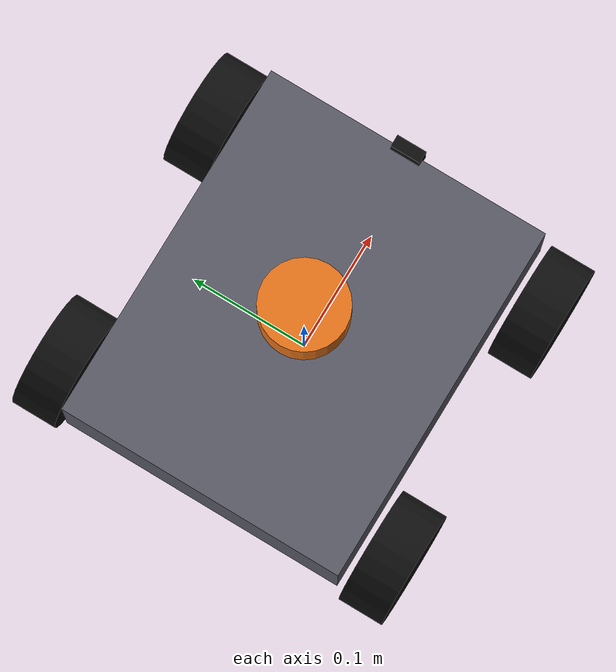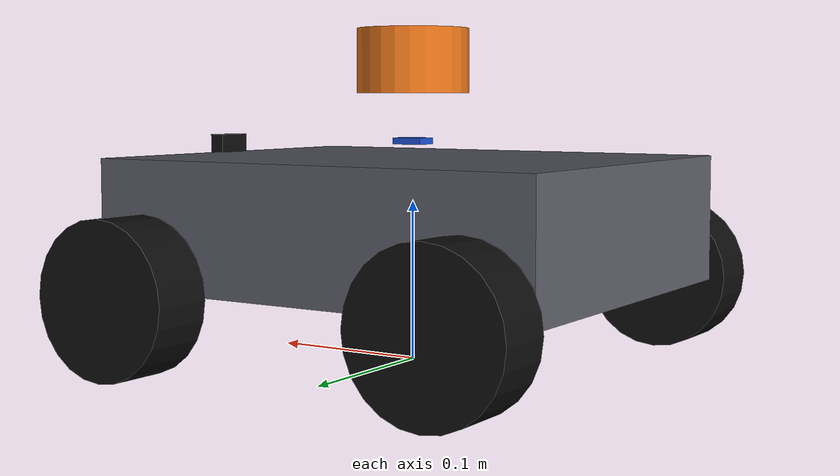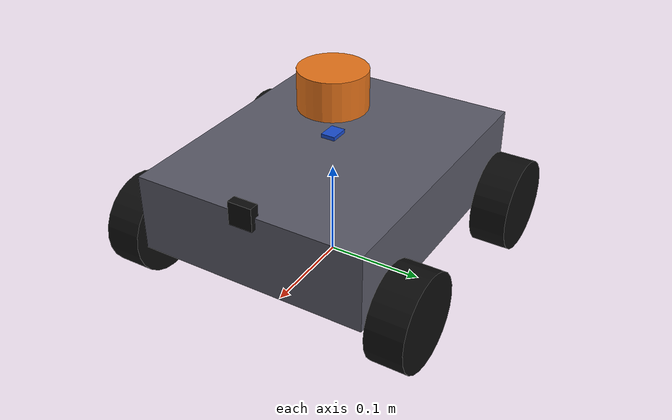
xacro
<?xml version="1.0"?>
<robot xmlns:xacro="http://www.ros.org/wiki/xacro" name="omni_bot">

  <xacro:include filename="$(find omni_description)/urdf/inertial_macros.xacro"/>
  <xacro:include filename="$(find omni_description)/urdf/sensors.xacro"/>
  <xacro:include filename="$(find omni_description)/urdf/gazebo.xacro"/>

  <!-- Parameters -->
  <xacro:property name="base_length" value="0.30"/>
  <xacro:property name="base_width"  value="0.24"/>
  <xacro:property name="base_height" value="0.08"/>
  <xacro:property name="base_mass"   value="3.5"/>

  <xacro:property name="wheel_radius" value="0.048"/>
  <xacro:property name="wheel_width"  value="0.038"/>
  <xacro:property name="wheel_mass"   value="0.25"/>

  <!-- wheel mount offsets from base_link centre -->
  <xacro:property name="wheel_xoff" value="0.11"/>
  <xacro:property name="wheel_yoff" value="0.145"/>
  <xacro:property name="wheel_zoff" value="0.0"/>

  <!-- Materials -->
  <material name="grey"><color rgba="0.35 0.35 0.4 1.0"/></material>
  <material name="black"><color rgba="0.05 0.05 0.05 1.0"/></material>
  <material name="orange"><color rgba="0.9 0.45 0.1 1.0"/></material>
  <material name="blue"><color rgba="0.1 0.3 0.8 1.0"/></material>

  <!-- ============================================================
       base_footprint (ground projection, nav reference frame)
       ============================================================ -->
  <link name="base_footprint"/>

  <joint name="base_joint" type="fixed">
    <parent link="base_footprint"/>
    <child link="base_link"/>
    <origin xyz="0 0 ${wheel_radius}" rpy="0 0 0"/>
  </joint>

  <!-- ============================================================
       base_link (chassis)
       ============================================================ -->
  <link name="base_link">
    <visual>
      <origin xyz="0 0 ${base_height/2}" rpy="0 0 0"/>
      <geometry><box size="${base_length} ${base_width} ${base_height}"/></geometry>
      <material name="grey"/>
    </visual>
    <collision>
      <origin xyz="0 0 ${base_height/2}" rpy="0 0 0"/>
      <geometry><box size="${base_length} ${base_width} ${base_height}"/></geometry>
    </collision>
    <xacro:inertial_box mass="${base_mass}" x="${base_length}" y="${base_width}" z="${base_height}">
      <origin xyz="0 0 ${base_height/2}" rpy="0 0 0"/>
    </xacro:inertial_box>
  </link>

  <xacro:macro name="mecanum_wheel" params="prefix xsign ysign">
    <link name="${prefix}_wheel_link">
      <visual>
        <origin xyz="0 0 0" rpy="${pi/2} 0 0"/>
        <geometry><cylinder radius="${wheel_radius}" length="${wheel_width}"/></geometry>
        <material name="black"/>
      </visual>
      <collision>
        <origin xyz="0 0 0" rpy="${pi/2} 0 0"/>
        <geometry><cylinder radius="${wheel_radius}" length="${wheel_width}"/></geometry>
        <surface>
          <friction><ode><mu>1.0</mu><mu2>1.0</mu2></ode></friction>
        </surface>
      </collision>
      <xacro:inertial_cylinder mass="${wheel_mass}" length="${wheel_width}" radius="${wheel_radius}">
        <origin xyz="0 0 0" rpy="${pi/2} 0 0"/>
      </xacro:inertial_cylinder>
    </link>

    <joint name="${prefix}_wheel_joint" type="continuous">
      <parent link="base_link"/>
      <child link="${prefix}_wheel_link"/>
      <origin xyz="${xsign*wheel_xoff} ${ysign*wheel_yoff} ${wheel_zoff}" rpy="0 0 0"/>
      <axis xyz="0 1 0"/>
      <limit effort="20.0" velocity="30.0"/>
      <dynamics damping="0.05" friction="0.1"/>
    </joint>
  </xacro:macro>

  <xacro:mecanum_wheel prefix="fl" xsign="1"  ysign="1"/>
  <xacro:mecanum_wheel prefix="fr" xsign="1"  ysign="-1"/>
  <xacro:mecanum_wheel prefix="rl" xsign="-1" ysign="1"/>
  <xacro:mecanum_wheel prefix="rr" xsign="-1" ysign="-1"/>

  <!-- ============================================================
       Sensors (IMU, camera, lidar) — defined in sensors.xacro
       ============================================================ -->
  <xacro:imu_sensor    parent="base_link" xyz="0 0 ${base_height+0.01}"/>
  <xacro:camera_sensor parent="base_link" xyz="${base_length/2} 0 ${base_height}"/>
  <xacro:lidar_sensor  parent="base_link" xyz="0 0 ${base_height+0.06}"/>

</robot>

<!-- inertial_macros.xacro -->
<robot xmlns:xacro="http://www.ros.org/wiki/xacro">

  <!-- Reusable inertial macros -->
  <xacro:macro name="inertial_box" params="mass x y z *origin">
    <inertial>
      <xacro:insert_block name="origin"/>
      <mass value="${mass}"/>
      <inertia
        ixx="${(mass/12.0)*(y*y+z*z)}" ixy="0.0" ixz="0.0"
        iyy="${(mass/12.0)*(x*x+z*z)}" iyz="0.0"
        izz="${(mass/12.0)*(x*x+y*y)}"/>
    </inertial>
  </xacro:macro>

  <xacro:macro name="inertial_cylinder" params="mass length radius *origin">
    <inertial>
      <xacro:insert_block name="origin"/>
      <mass value="${mass}"/>
      <inertia
        ixx="${(mass/12.0)*(3*radius*radius+length*length)}" ixy="0.0" ixz="0.0"
        iyy="${(mass/12.0)*(3*radius*radius+length*length)}" iyz="0.0"
        izz="${(mass/2.0)*(radius*radius)}"/>
    </inertial>
  </xacro:macro>

</robot>

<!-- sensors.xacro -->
<robot xmlns:xacro="http://www.ros.org/wiki/xacro">

  <!-- ============================================================
       IMU — models the GY-9250 (MPU-9250) 9DOF module
       ============================================================ -->
  <xacro:macro name="imu_sensor" params="parent xyz">
    <link name="imu_link">
      <visual>
        <geometry><box size="0.02 0.015 0.004"/></geometry>
        <material name="blue"/>
      </visual>
      <collision>
        <geometry><box size="0.02 0.015 0.004"/></geometry>
      </collision>
      <inertial>
        <mass value="0.01"/>
        <inertia ixx="1e-6" ixy="0" ixz="0" iyy="1e-6" iyz="0" izz="1e-6"/>
      </inertial>
    </link>
    <joint name="imu_joint" type="fixed">
      <parent link="${parent}"/>
      <child link="imu_link"/>
      <origin xyz="${xyz}" rpy="0 0 0"/>
    </joint>
  </xacro:macro>

  <!-- ============================================================
       Camera — models the Raspberry Pi Camera Module 3
       ============================================================ -->
  <xacro:macro name="camera_sensor" params="parent xyz">
    <link name="camera_link">
      <visual>
        <geometry><box size="0.010 0.025 0.024"/></geometry>
        <material name="black"/>
      </visual>
      <collision>
        <geometry><box size="0.010 0.025 0.024"/></geometry>
      </collision>
      <inertial>
        <mass value="0.01"/>
        <inertia ixx="1e-6" ixy="0" ixz="0" iyy="1e-6" iyz="0" izz="1e-6"/>
      </inertial>
    </link>
    <joint name="camera_joint" type="fixed">
      <parent link="${parent}"/>
      <child link="camera_link"/>
      <origin xyz="${xyz}" rpy="0 0 0"/>
    </joint>

    <!-- optical frame (REP-103: z forward, x right, y down) -->
    <link name="camera_optical_link"/>
    <joint name="camera_optical_joint" type="fixed">
      <parent link="camera_link"/>
      <child link="camera_optical_link"/>
      <origin xyz="0 0 0" rpy="${-pi/2} 0 ${-pi/2}"/>
    </joint>
  </xacro:macro>

  <xacro:macro name="lidar_sensor" params="parent xyz">
    <link name="lidar_link">
      <visual>
        <geometry><cylinder radius="0.035" length="0.04"/></geometry>
        <material name="orange"/>
      </visual>
      <collision>
        <geometry><cylinder radius="0.035" length="0.04"/></geometry>
      </collision>
      <inertial>
        <mass value="0.1"/>
        <inertia ixx="1e-4" ixy="0" ixz="0" iyy="1e-4" iyz="0" izz="1e-4"/>
      </inertial>
    </link>
    <joint name="lidar_joint" type="fixed">
      <parent link="${parent}"/>
      <child link="lidar_link"/>
      <origin xyz="${xyz}" rpy="0 0 0"/>
    </joint>
  </xacro:macro>

</robot>
